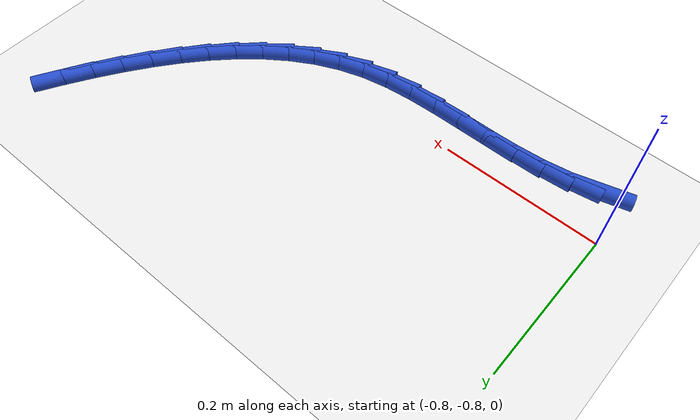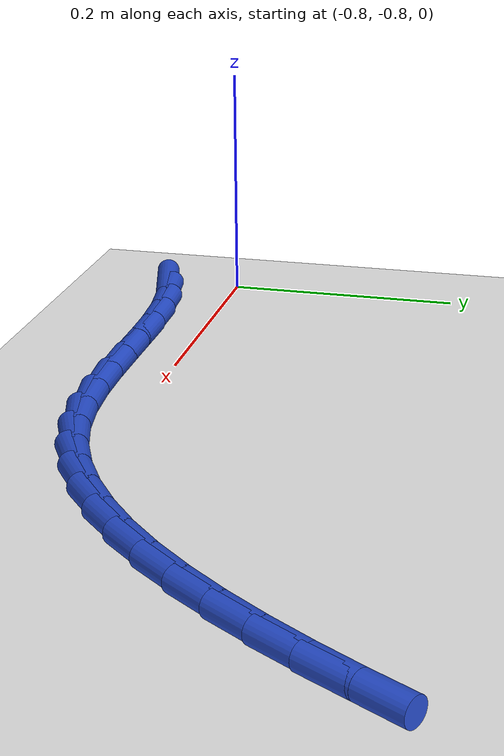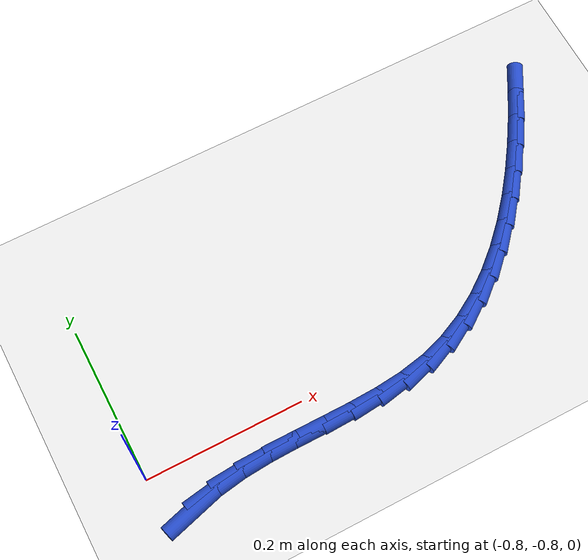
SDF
<sdf version="1.6">
 <world name="default">
  <model name="ground_plane">
   <static>1</static>
   <link name="link">
    <collision name="collision">
     <geometry><plane><normal>0 0 1</normal><size>100 100</size></plane></geometry>
     <surface><friction><ode><mu>100</mu><mu2>50</mu2></ode></friction></surface>
    </collision>
    <visual name="visual">
     <cast_shadows>0</cast_shadows>
     <geometry><plane><normal>0 0 1</normal><size>100 100</size></plane></geometry>
     <material>
      <script><uri>file://media/materials/scripts/gazebo.material</uri><name>Gazebo/WhiteGlow</name></script>
     </material>
    </visual>
   </link>
  </model>
  <model name="line">
   <link name="link_213">
    <pose>-0.7672721533802813 -0.8575592886673269 0.01 0 1.57 0.2764055660840148</pose>
    <collision name="collision">
     <geometry><cylinder><radius>0.01</radius><length>0.08</length></cylinder></geometry>
    </collision>
    <visual name="visual">
     <material>
      <script><name>Gazebo/Blue</name><uri>file://media/materials/scripts/gazebo.material</uri></script>
     </material>
     <geometry><cylinder><radius>0.01</radius><length>0.08</length></cylinder></geometry>
    </visual>
   </link>
   <link name="link_214">
    <pose>-0.7345385436125822 -0.8482738543053933 0.01 0 1.57 0.1583331322438853</pose>
    <collision name="collision">
     <geometry><cylinder><radius>0.01</radius><length>0.08</length></cylinder></geometry>
    </collision>
    <visual name="visual">
     <material>
      <script><name>Gazebo/Blue</name><uri>file://media/materials/scripts/gazebo.material</uri></script>
     </material>
     <geometry><cylinder><radius>0.01</radius><length>0.08</length></cylinder></geometry>
    </visual>
   </link>
   <link name="link_215">
    <pose>-0.7001673750667332 -0.8427858221785138 0.01 0 1.57 0.07500320977532073</pose>
    <collision name="collision">
     <geometry><cylinder><radius>0.01</radius><length>0.08</length></cylinder></geometry>
    </collision>
    <visual name="visual">
     <material>
      <script><name>Gazebo/Blue</name><uri>file://media/materials/scripts/gazebo.material</uri></script>
     </material>
     <geometry><cylinder><radius>0.01</radius><length>0.08</length></cylinder></geometry>
    </visual>
   </link>
   <link name="link_216">
    <pose>-0.6645779073110402 -0.8401114811622992 0.01 0 1.57 0.023199894599593925</pose>
    <collision name="collision">
     <geometry><cylinder><radius>0.01</radius><length>0.08</length></cylinder></geometry>
    </collision>
    <visual name="visual">
     <material>
      <script><name>Gazebo/Blue</name><uri>file://media/materials/scripts/gazebo.material</uri></script>
     </material>
     <geometry><cylinder><radius>0.01</radius><length>0.08</length></cylinder></geometry>
    </visual>
   </link>
   <link name="link_217">
    <pose>-0.628189399913809 -0.8392671201323604 0.01 0 1.57 -5.188797405368808e-05</pose>
    <collision name="collision">
     <geometry><cylinder><radius>0.01</radius><length>0.08</length></cylinder></geometry>
    </collision>
    <visual name="visual">
     <material>
      <script><name>Gazebo/Blue</name><uri>file://media/materials/scripts/gazebo.material</uri></script>
     </material>
     <geometry><cylinder><radius>0.01</radius><length>0.08</length></cylinder></geometry>
    </visual>
   </link>
   <link name="link_218">
    <pose>-0.591421112443345 -0.8392690279643084 0.01 0 1.57 0.0036901228990081827</pose>
    <collision name="collision">
     <geometry><cylinder><radius>0.01</radius><length>0.08</length></cylinder></geometry>
    </collision>
    <visual name="visual">
     <material>
      <script><name>Gazebo/Blue</name><uri>file://media/materials/scripts/gazebo.material</uri></script>
     </material>
     <geometry><cylinder><radius>0.01</radius><length>0.08</length></cylinder></geometry>
    </visual>
   </link>
   <link name="link_219">
    <pose>-0.5546923044679547 -0.8391334935337534 0.01 0 1.57 0.03463421320193526</pose>
    <collision name="collision">
     <geometry><cylinder><radius>0.01</radius><length>0.08</length></cylinder></geometry>
    </collision>
    <visual name="visual">
     <material>
      <script><name>Gazebo/Blue</name><uri>file://media/materials/scripts/gazebo.material</uri></script>
     </material>
     <geometry><cylinder><radius>0.01</radius><length>0.08</length></cylinder></geometry>
    </visual>
   </link>
   <link name="link_220">
    <pose>-0.5184222355559436 -0.8378768057163075 0.01 0 1.57 0.09469630268580086</pose>
    <collision name="collision">
     <geometry><cylinder><radius>0.01</radius><length>0.08</length></cylinder></geometry>
    </collision>
    <visual name="visual">
     <material>
      <script><name>Gazebo/Blue</name><uri>file://media/materials/scripts/gazebo.material</uri></script>
     </material>
     <geometry><cylinder><radius>0.01</radius><length>0.08</length></cylinder></geometry>
    </visual>
   </link>
   <link name="link_221">
    <pose>-0.48303016527561754 -0.8345152533875809 0.01 0 1.57 0.1869703986990922</pose>
    <collision name="collision">
     <geometry><cylinder><radius>0.01</radius><length>0.08</length></cylinder></geometry>
    </collision>
    <visual name="visual">
     <material>
      <script><name>Gazebo/Blue</name><uri>file://media/materials/scripts/gazebo.material</uri></script>
     </material>
     <geometry><cylinder><radius>0.01</radius><length>0.08</length></cylinder></geometry>
    </visual>
   </link>
   <link name="link_222">
    <pose>-0.4489353284382736 -0.828065192138967 0.01 0 1.57 0.3059246453368313</pose>
    <collision name="collision">
     <geometry><cylinder><radius>0.01</radius><length>0.08</length></cylinder></geometry>
    </collision>
    <visual name="visual">
     <material>
      <script><name>Gazebo/Blue</name><uri>file://media/materials/scripts/gazebo.material</uri></script>
     </material>
     <geometry><cylinder><radius>0.01</radius><length>0.08</length></cylinder></geometry>
    </visual>
   </link>
   <link name="link_223">
    <pose>-0.4164586969106426 -0.8178077789085487 0.01 0 1.57 0.4236892246943424</pose>
    <collision name="collision">
     <geometry><cylinder><radius>0.01</radius><length>0.08</length></cylinder></geometry>
    </collision>
    <visual name="visual">
     <material>
      <script><name>Gazebo/Blue</name><uri>file://media/materials/scripts/gazebo.material</uri></script>
     </material>
     <geometry><cylinder><radius>0.01</radius><length>0.08</length></cylinder></geometry>
    </visual>
   </link>
   <link name="link_224">
    <pose>-0.3855998426759341 -0.8038902867716474 0.01 0 1.57 0.5320794228117767</pose>
    <collision name="collision">
     <geometry><cylinder><radius>0.01</radius><length>0.08</length></cylinder></geometry>
    </collision>
    <visual name="visual">
     <material>
      <script><name>Gazebo/Blue</name><uri>file://media/materials/scripts/gazebo.material</uri></script>
     </material>
     <geometry><cylinder><radius>0.01</radius><length>0.08</length></cylinder></geometry>
    </visual>
   </link>
   <link name="link_225">
    <pose>-0.3562927307072979 -0.7866367881524431 0.01 0 1.57 0.6295407377991462</pose>
    <collision name="collision">
     <geometry><cylinder><radius>0.01</radius><length>0.08</length></cylinder></geometry>
    </collision>
    <visual name="visual">
     <material>
      <script><name>Gazebo/Blue</name><uri>file://media/materials/scripts/gazebo.material</uri></script>
     </material>
     <geometry><cylinder><radius>0.01</radius><length>0.08</length></cylinder></geometry>
    </visual>
   </link>
   <link name="link_226">
    <pose>-0.3284713259778836 -0.766371355475115 0.01 0 1.57 0.7156414790098619</pose>
    <collision name="collision">
     <geometry><cylinder><radius>0.01</radius><length>0.08</length></cylinder></geometry>
    </collision>
    <visual name="visual">
     <material>
      <script><name>Gazebo/Blue</name><uri>file://media/materials/scripts/gazebo.material</uri></script>
     </material>
     <geometry><cylinder><radius>0.01</radius><length>0.08</length></cylinder></geometry>
    </visual>
   </link>
   <link name="link_227">
    <pose>-0.30206959346084056 -0.743418061163843 0.01 0 1.57 0.7907388697778259</pose>
    <collision name="collision">
     <geometry><cylinder><radius>0.01</radius><length>0.08</length></cylinder></geometry>
    </collision>
    <visual name="visual">
     <material>
      <script><name>Gazebo/Blue</name><uri>file://media/materials/scripts/gazebo.material</uri></script>
     </material>
     <geometry><cylinder><radius>0.01</radius><length>0.08</length></cylinder></geometry>
    </visual>
   </link>
   <link name="link_228">
    <pose>-0.2770214981293186 -0.7181009776428064 0.01 0 1.57 0.8556364509853965</pose>
    <collision name="collision">
     <geometry><cylinder><radius>0.01</radius><length>0.08</length></cylinder></geometry>
    </collision>
    <visual name="visual">
     <material>
      <script><name>Gazebo/Blue</name><uri>file://media/materials/scripts/gazebo.material</uri></script>
     </material>
     <geometry><cylinder><radius>0.01</radius><length>0.08</length></cylinder></geometry>
    </visual>
   </link>
   <link name="link_229">
    <pose>-0.2532610049564671 -0.6907441773361853 0.01 0 1.57 0.9113190602571913</pose>
    <collision name="collision">
     <geometry><cylinder><radius>0.01</radius><length>0.08</length></cylinder></geometry>
    </collision>
    <visual name="visual">
     <material>
      <script><name>Gazebo/Blue</name><uri>file://media/materials/scripts/gazebo.material</uri></script>
     </material>
     <geometry><cylinder><radius>0.01</radius><length>0.08</length></cylinder></geometry>
    </visual>
   </link>
   <link name="link_230">
    <pose>-0.23072207891543584 -0.6616717326681589 0.01 0 1.57 0.9587809238162984</pose>
    <collision name="collision">
     <geometry><cylinder><radius>0.01</radius><length>0.08</length></cylinder></geometry>
    </collision>
    <visual name="visual">
     <material>
      <script><name>Gazebo/Blue</name><uri>file://media/materials/scripts/gazebo.material</uri></script>
     </material>
     <geometry><cylinder><radius>0.01</radius><length>0.08</length></cylinder></geometry>
    </visual>
   </link>
   <link name="link_231">
    <pose>-0.20933868497937427 -0.631207716062907 0.01 0 1.57 0.9989286143365639</pose>
    <collision name="collision">
     <geometry><cylinder><radius>0.01</radius><length>0.08</length></cylinder></geometry>
    </collision>
    <visual name="visual">
     <material>
      <script><name>Gazebo/Blue</name><uri>file://media/materials/scripts/gazebo.material</uri></script>
     </material>
     <geometry><cylinder><radius>0.01</radius><length>0.08</length></cylinder></geometry>
    </visual>
   </link>
   <link name="link_232">
    <pose>-0.18904478812143208 -0.5996761999446095 0.01 0 1.57 1.0325332362009412</pose>
    <collision name="collision">
     <geometry><cylinder><radius>0.01</radius><length>0.08</length></cylinder></geometry>
    </collision>
    <visual name="visual">
     <material>
      <script><name>Gazebo/Blue</name><uri>file://media/materials/scripts/gazebo.material</uri></script>
     </material>
     <geometry><cylinder><radius>0.01</radius><length>0.08</length></cylinder></geometry>
    </visual>
   </link>
   <link name="link_233">
    <pose>-0.16977435331475862 -0.5674012567374453 0.01 0 1.57 1.060210193123334</pose>
    <collision name="collision">
     <geometry><cylinder><radius>0.01</radius><length>0.08</length></cylinder></geometry>
    </collision>
    <visual name="visual">
     <material>
      <script><name>Gazebo/Blue</name><uri>file://media/materials/scripts/gazebo.material</uri></script>
     </material>
     <geometry><cylinder><radius>0.01</radius><length>0.08</length></cylinder></geometry>
    </visual>
   </link>
  </model>
 </world>
</sdf>
